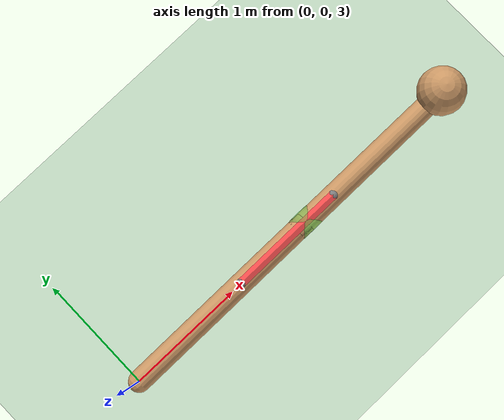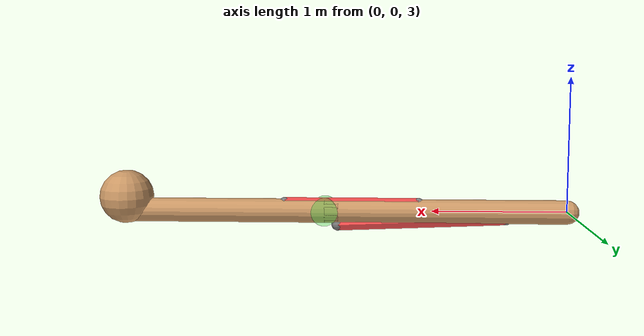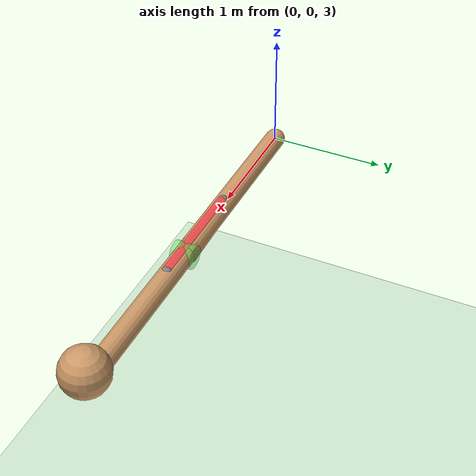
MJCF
<mujoco model="arm">
    <compiler angle="degree" coordinate="local" inertiafromgeom="true"/>
    <default>
        <geom conaffinity="1" condim="1" contype="1" margin="0.001" material="geom" rgba="0.8 0.6 .4 1" solimp=".8 .8 .01" solref=".02 1"/>
        <motor ctrllimited="true" ctrlrange="-.4 .4"/>
    </default>
    <option integrator="RK4" timestep="0.002"/>
    <visual>
        <map znear="0.02"/>
    </visual>
    <worldbody>
        <light cutoff="100" diffuse="1 1 1" dir="-0 0 -1.3" directional="true" exponent="1" pos="0 0 1.3" specular=".1 .1 .1"/>
        <geom conaffinity="1" condim="3" material="MatPlane" name="floor" pos="0 0 0" rgba="0.8 0.9 0.8 1" size="20 20 .125" type="plane"/>
        <body name="upper_arm_body" pos="0.0 0.0 3.0">
            <joint name="shoulder_joint" axis="0 1 0" limited="true" range="-5 45" />
            <geom name="upper_arm_geom" fromto="0.0 0.0 0.0 1.8 0.0 0.0"  size="0.09" type="capsule"/>
            <geom name="elbow" type="cylinder" fromto="1.8 0.09 0.0 1.8 -0.09 0.0" size="0.1" rgba=".3 .9 .3 .4"/>
            <site name="brachialis_u_insertion" pos="1.1 0.0 0.05" size="0.05"/>
            <site name="triceps_u_insertion" pos="0.45 0.0 -0.05" size="0.05"/>
            <body name="lower_arm_body" pos="1.8 0.0 0.0">
                <joint axis="0 1 0" damping="1" limited="true" name="elbow_joint" pos="0.0 0.0 0.0" range="-90 5"/>
                <geom fromto="-0.1 0.0 0.0 1.5 0.0 0.0" name="lower_arm_geom" size="0.09" type="capsule"/>
                <geom pos="1.5 0.0 0.1" size="0.2" type="sphere"/>
                <site name="brachialis_l_insertion" pos="0.3 0.0 0.05" size="0.05"/>
                <site name="triceps_l_insertion" pos="-0.1 0.0 -0.1" size="0.05" />
            </body>
        </body>
    </worldbody>
    <tendon>
        <spatial name="brachialis" width="0.05" rgba=".95 .3 .3 1" stiffness="1000">
            <site site="brachialis_u_insertion" />
            <geom geom="elbow" />
            <site site="brachialis_l_insertion" />
        </spatial>
        <spatial name="triceps" width="0.05" rgba=".95 .3 .3 1" stiffness="500">
            <site site="triceps_u_insertion" />
            <geom geom="elbow" />
            <site site="triceps_l_insertion" />
        </spatial>
    </tendon>
    <asset>
        <texture builtin="gradient" height="100" rgb1=".4 .5 .6" rgb2="0 0 0" type="skybox" width="100"/>
        <texture builtin="flat" height="1278" mark="cross" markrgb="1 1 1" name="texgeom" random="0.01" rgb1="0.8 0.6 0.4" rgb2="0.8 0.6 0.4" type="cube" width="127"/>
        <texture builtin="checker" height="100" name="texplane" rgb1="0 0 0" rgb2="0.8 0.8 0.8" type="2d" width="100"/>
        <material name="MatPlane" reflectance="0.5" shininess="1" specular="1" texrepeat="60 60" texture="texplane"/>
        <material name="geom" texture="texgeom" texuniform="true"/>
    </asset>
</mujoco>
